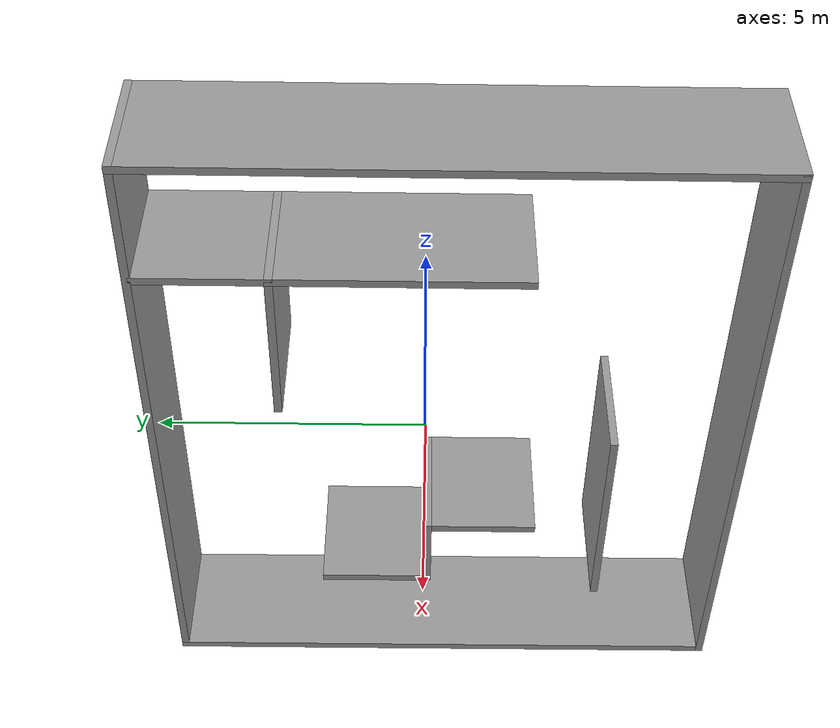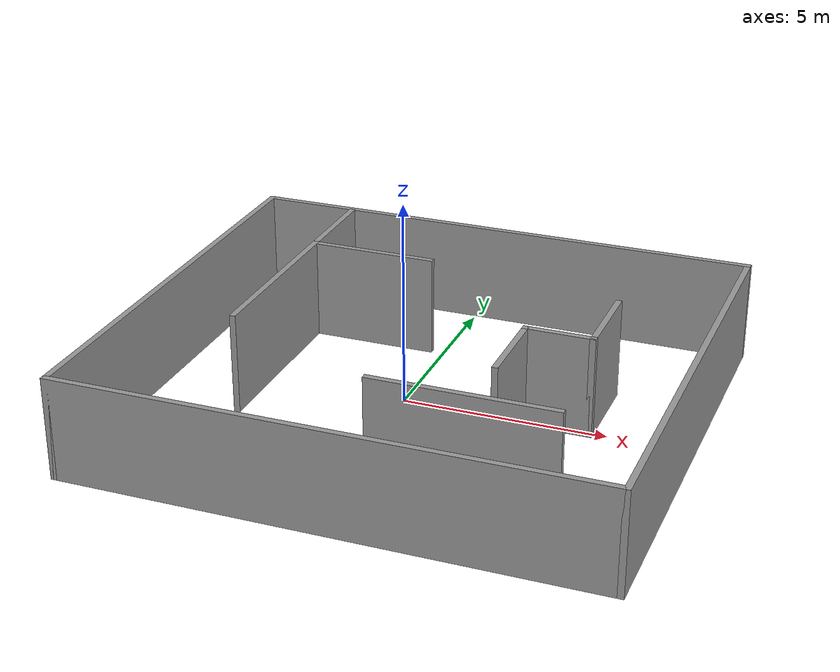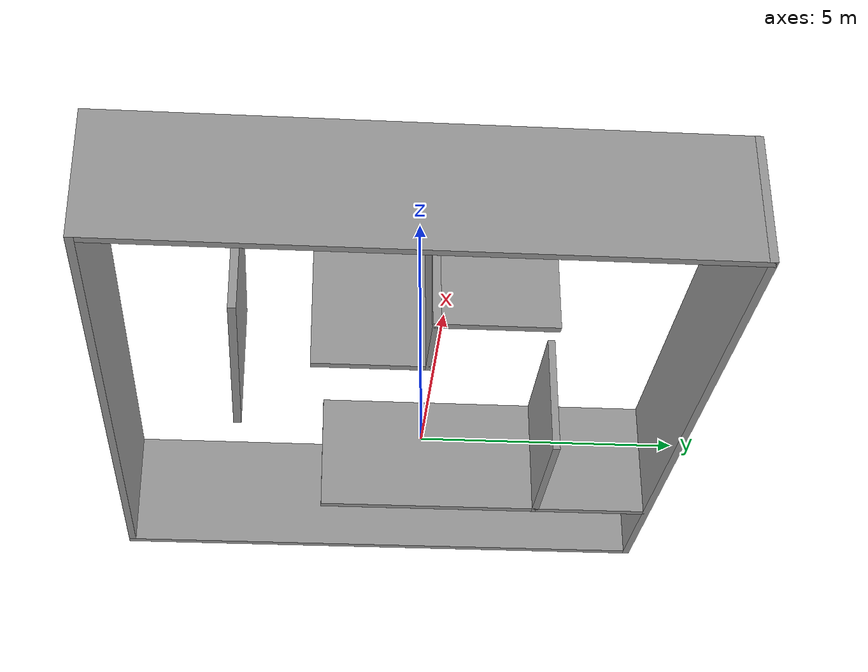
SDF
<?xml version='1.0'?>
<sdf version='1.7'>
  <model name='mapa'>
    <pose>0.581791 -0.468564 0 0 -0 0</pose>
    <link name='Wall_61'>
      <collision name='Wall_61_Collision'>
        <geometry>
          <box>
            <size>4.75 0.15 2.5</size>
          </box>
        </geometry>
        <pose>0 0 1.25 0 -0 0</pose>
      </collision>
      <visual name='Wall_61_Visual'>
        <pose>0 0 1.25 0 -0 0</pose>
        <geometry>
          <box>
            <size>4.75 0.15 2.5</size>
          </box>
        </geometry>
        <material>
          <script>
            <uri>file://media/materials/scripts/gazebo.material</uri>
            <name>Gazebo/Grey</name>
          </script>
          <ambient>1 1 1 1</ambient>
        </material>
        <meta>
          <layer>0</layer>
        </meta>
      </visual>
      <pose>-4.07465 0.925227 0 0 -0 -1.5708</pose>
    </link>
    <link name='Wall_63'>
      <collision name='Wall_63_Collision'>
        <geometry>
          <box>
            <size>3.25 0.15 2.5</size>
          </box>
        </geometry>
        <pose>0 0 1.25 0 -0 0</pose>
      </collision>
      <visual name='Wall_63_Visual'>
        <pose>0 0 1.25 0 -0 0</pose>
        <geometry>
          <box>
            <size>3.25 0.15 2.5</size>
          </box>
        </geometry>
        <material>
          <script>
            <uri>file://media/materials/scripts/gazebo.material</uri>
            <name>Gazebo/Grey</name>
          </script>
          <ambient>1 1 1 1</ambient>
        </material>
        <meta>
          <layer>0</layer>
        </meta>
      </visual>
      <pose>-2.52465 3.22523 0 0 -0 0</pose>
    </link>
    <link name='Wall_66'>
      <collision name='Wall_66_Collision'>
        <geometry>
          <box>
            <size>4.5 0.15 2.5</size>
          </box>
        </geometry>
        <pose>0 0 1.25 0 -0 0</pose>
      </collision>
      <visual name='Wall_66_Visual'>
        <pose>0 0 1.25 0 -0 0</pose>
        <geometry>
          <box>
            <size>4.5 0.15 2.5</size>
          </box>
        </geometry>
        <material>
          <script>
            <uri>file://media/materials/scripts/gazebo.material</uri>
            <name>Gazebo/Grey</name>
          </script>
          <ambient>1 1 1 1</ambient>
        </material>
        <meta>
          <layer>0</layer>
        </meta>
      </visual>
      <pose>2.15807 -3.15995 0 0 -0 3.14159</pose>
    </link>
    <link name='Wall_69'>
      <collision name='Wall_69_Collision'>
        <geometry>
          <box>
            <size>13 0.15 2.5</size>
          </box>
        </geometry>
        <pose>0 0 1.25 0 -0 0</pose>
      </collision>
      <visual name='Wall_69_Visual'>
        <pose>0 0 1.25 0 -0 0</pose>
        <geometry>
          <box>
            <size>13 0.15 2.5</size>
          </box>
        </geometry>
        <material>
          <script>
            <uri>file://media/materials/scripts/gazebo.material</uri>
            <name>Gazebo/Grey</name>
          </script>
          <ambient>1 1 1 1</ambient>
        </material>
        <meta>
          <layer>0</layer>
        </meta>
      </visual>
      <pose>0 -5.675 0 0 -0 0</pose>
    </link>
    <link name='Wall_71'>
      <collision name='Wall_71_Collision'>
        <geometry>
          <box>
            <size>11.5 0.15 2.5</size>
          </box>
        </geometry>
        <pose>0 0 1.25 0 -0 0</pose>
      </collision>
      <visual name='Wall_71_Visual'>
        <pose>0 0 1.25 0 -0 0</pose>
        <geometry>
          <box>
            <size>11.5 0.15 2.5</size>
          </box>
        </geometry>
        <material>
          <script>
            <uri>file://media/materials/scripts/gazebo.material</uri>
            <name>Gazebo/Grey</name>
          </script>
          <ambient>1 1 1 1</ambient>
        </material>
        <meta>
          <layer>0</layer>
        </meta>
      </visual>
      <pose>6.425 0 0 0 -0 1.5708</pose>
    </link>
    <link name='Wall_73'>
      <collision name='Wall_73_Collision'>
        <geometry>
          <box>
            <size>2.25 0.15 2.5</size>
          </box>
        </geometry>
        <pose>0 0 1.25 0 -0 0</pose>
      </collision>
      <visual name='Wall_73_Visual'>
        <pose>0 0 1.25 0 -0 0</pose>
        <geometry>
          <box>
            <size>2.25 0.15 2.5</size>
          </box>
        </geometry>
        <material>
          <script>
            <uri>file://media/materials/scripts/gazebo.material</uri>
            <name>Gazebo/Grey</name>
          </script>
          <ambient>1 1 1 1</ambient>
        </material>
        <meta>
          <layer>0</layer>
        </meta>
      </visual>
      <pose>4.01646 1.43647 0 0 -0 -1.5708</pose>
    </link>
    <link name='Wall_77'>
      <collision name='Wall_77_Collision'>
        <geometry>
          <box>
            <size>13 0.15 2.5</size>
          </box>
        </geometry>
        <pose>0 0 1.25 0 -0 0</pose>
      </collision>
      <visual name='Wall_77_Visual'>
        <pose>0 0 1.25 0 -0 0</pose>
        <geometry>
          <box>
            <size>13 0.15 2.5</size>
          </box>
        </geometry>
        <material>
          <script>
            <uri>file://media/materials/scripts/gazebo.material</uri>
            <name>Gazebo/Grey</name>
          </script>
          <ambient>1 1 1 1</ambient>
        </material>
        <meta>
          <layer>0</layer>
        </meta>
      </visual>
      <pose>0 5.675 0 0 -0 3.14159</pose>
    </link>
    <link name='Wall_78'>
      <collision name='Wall_78_Collision'>
        <geometry>
          <box>
            <size>11.5 0.15 2.5</size>
          </box>
        </geometry>
        <pose>0 0 1.25 0 -0 0</pose>
      </collision>
      <visual name='Wall_78_Visual'>
        <pose>0 0 1.25 0 -0 0</pose>
        <geometry>
          <box>
            <size>11.5 0.15 2.5</size>
          </box>
        </geometry>
        <material>
          <script>
            <uri>file://media/materials/scripts/gazebo.material</uri>
            <name>Gazebo/Grey</name>
          </script>
          <ambient>1 1 1 1</ambient>
        </material>
        <meta>
          <layer>0</layer>
        </meta>
      </visual>
      <pose>-6.425 0 0 0 -0 -1.5708</pose>
    </link>
    <link name='Wall_80'>
      <collision name='Wall_80_Collision'>
        <geometry>
          <box>
            <size>2.5 0.15 2.5</size>
          </box>
        </geometry>
        <pose>0 0 1.25 0 -0 0</pose>
      </collision>
      <visual name='Wall_80_Visual'>
        <pose>0 0 1.25 0 -0 0</pose>
        <geometry>
          <box>
            <size>2.5 0.15 2.5</size>
          </box>
        </geometry>
        <material>
          <script>
            <uri>file://media/materials/scripts/gazebo.material</uri>
            <name>Gazebo/Grey</name>
          </script>
          <ambient>1 1 1 1</ambient>
        </material>
        <meta>
          <layer>0</layer>
        </meta>
      </visual>
      <pose>-4.07465 4.40023 0 0 -0 1.5708</pose>
    </link>
    <link name='Wall_82'>
      <collision name='Wall_82_Collision'>
        <geometry>
          <box>
            <size>1.75 0.15 2.5</size>
          </box>
        </geometry>
        <pose>0 0 1.25 0 -0 0</pose>
      </collision>
      <visual name='Wall_82_Visual'>
        <pose>0 0 1.25 0 -0 0</pose>
        <geometry>
          <box>
            <size>1.75 0.15 2.5</size>
          </box>
        </geometry>
        <material>
          <script>
            <uri>file://media/materials/scripts/gazebo.material</uri>
            <name>Gazebo/Grey</name>
          </script>
          <ambient>1 1 1 1</ambient>
        </material>
        <meta>
          <layer>0</layer>
        </meta>
      </visual>
      <pose>3.21646 0.386473 0 0 -0 3.14159</pose>
    </link>
    <link name='Wall_83'>
      <collision name='Wall_83_Collision'>
        <geometry>
          <box>
            <size>2.25 0.15 2.5</size>
          </box>
        </geometry>
        <pose>0 0 1.25 0 -0 0</pose>
      </collision>
      <visual name='Wall_83_Visual'>
        <pose>0 0 1.25 0 -0 0</pose>
        <geometry>
          <box>
            <size>2.25 0.15 2.5</size>
          </box>
        </geometry>
        <material>
          <script>
            <uri>file://media/materials/scripts/gazebo.material</uri>
            <name>Gazebo/Grey</name>
          </script>
          <ambient>1 1 1 1</ambient>
        </material>
        <meta>
          <layer>0</layer>
        </meta>
      </visual>
      <pose>2.41646 -0.663527 0 0 -0 -1.5708</pose>
    </link>
    <static>1</static>
  </model>
</sdf>
